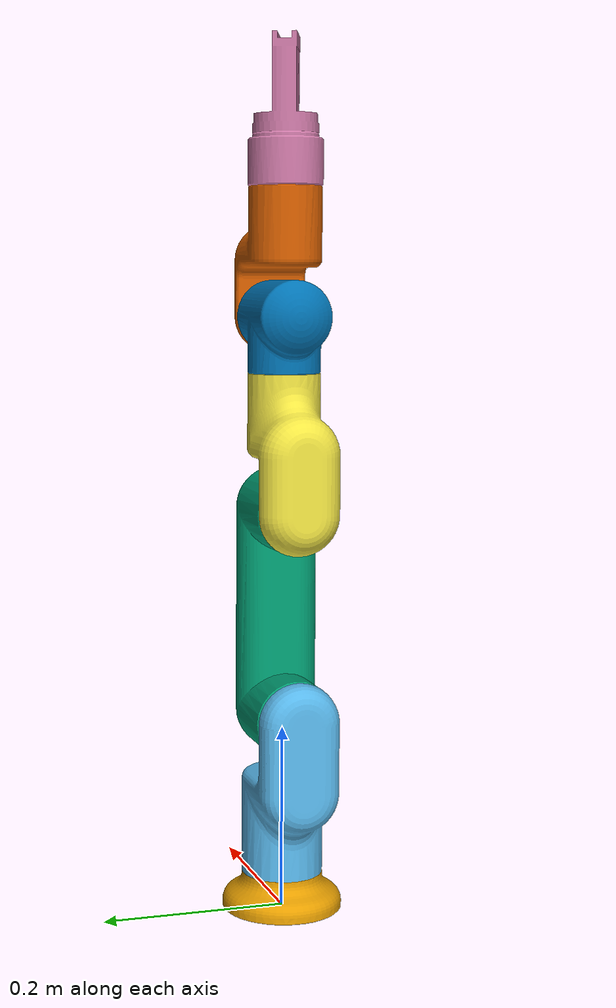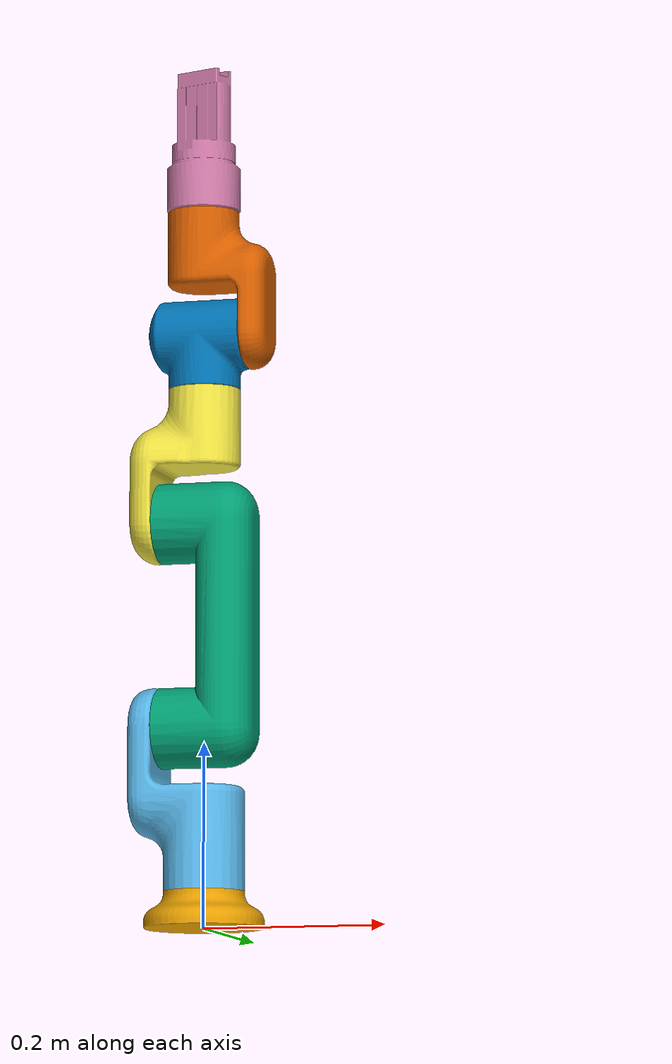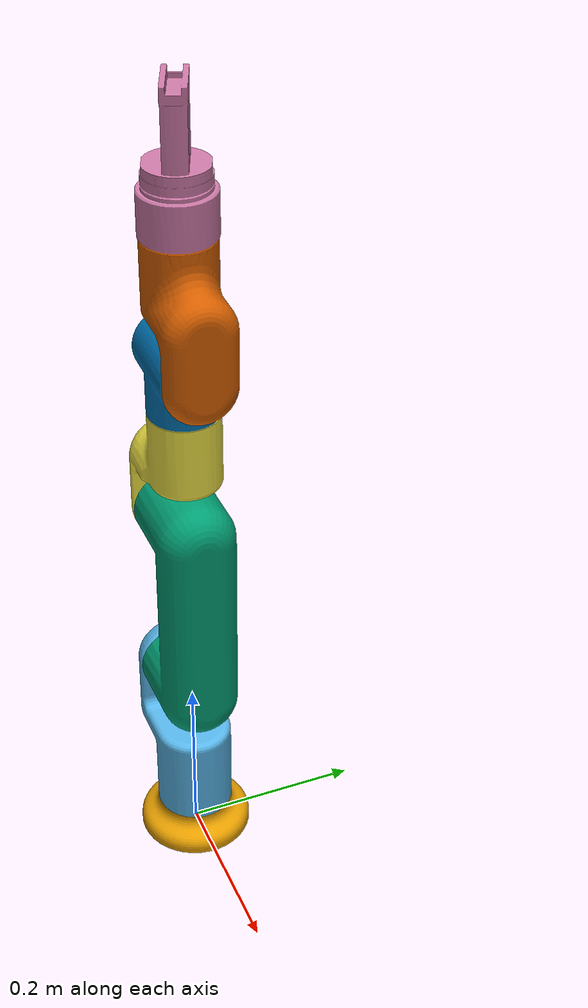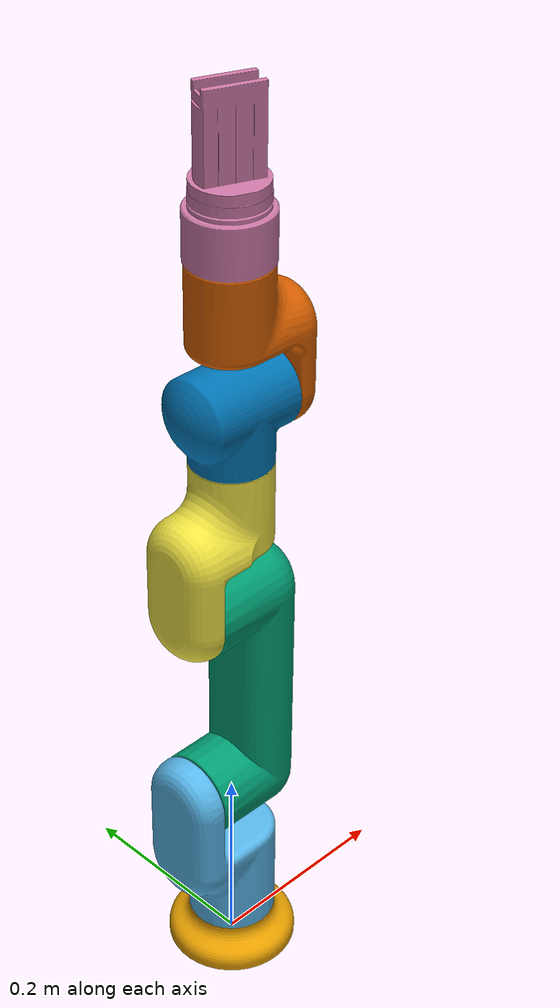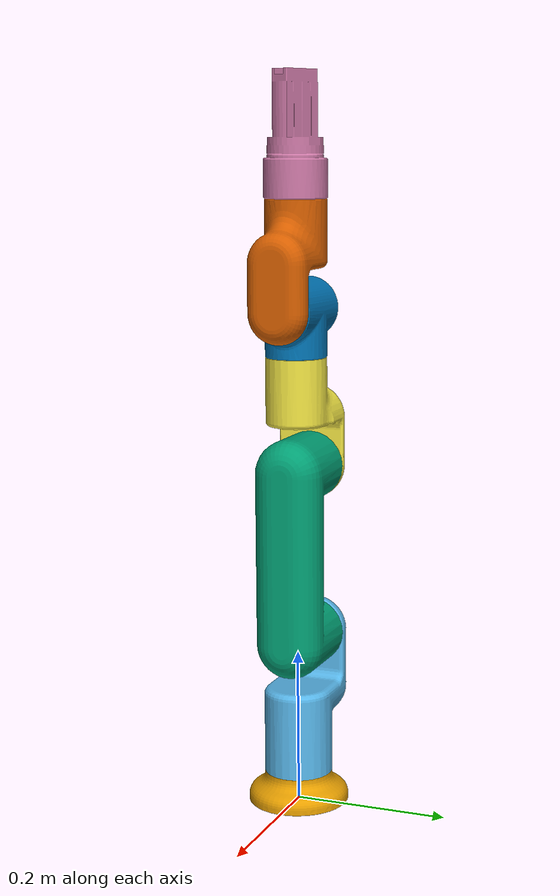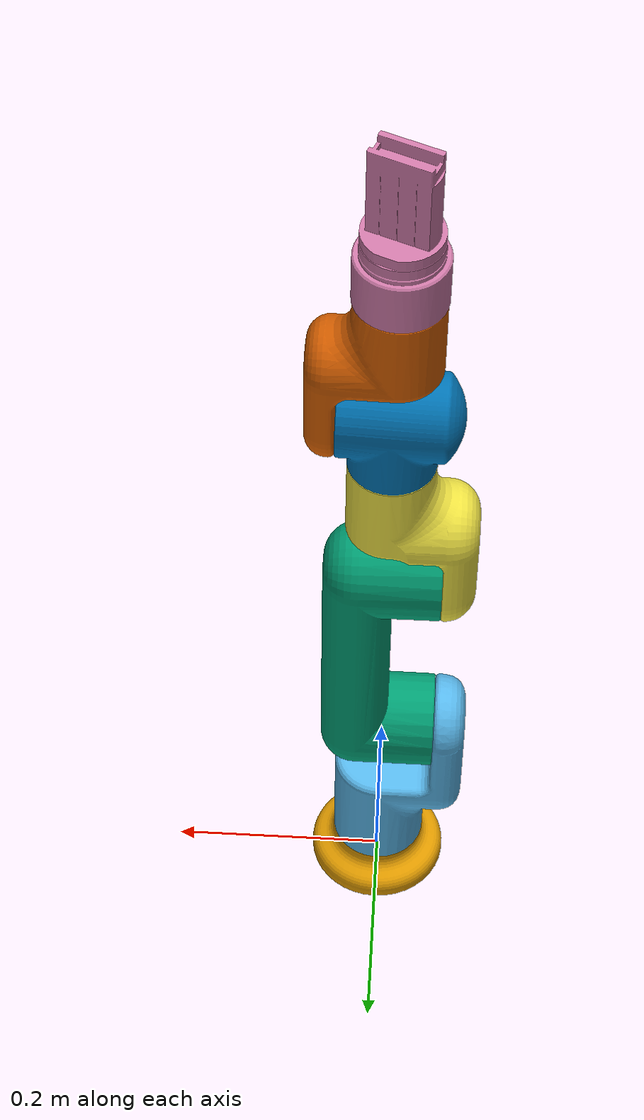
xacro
<?xml version="1.0"?>
<robot xmlns:xacro="http://www.ros.org/wiki/xacro" name="RobotArm_Left">
    <xacro:arg name="initial_positions_file" default="initial_positions.yaml" />

    <!-- Import RobotArm_Left urdf file -->
    <xacro:include filename="$(find arm_left_description)/urdf/arm_left.urdf" />

    <!-- Import control_xacro -->
    <xacro:include filename="RobotArm_Left.ros2_control.xacro" />

    <xacro:RobotArm_Left_ros2_control name="FakeSystem" initial_positions_file="$(arg initial_positions_file)"/>

</robot>

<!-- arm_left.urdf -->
<robot name="RobotArm_Left">
  <joint name="j1_Joint_L" type="revolute">
    <origin xyz="0. 0. 0.0485" rpy="0. 0. -3.1415854"/>
    <parent link="RobotArm_Left"/>
    <child link="j1_Link_L"/>
    <axis xyz="0. 0. 1."/>
    <limit lower="-3.0543262" upper="3.0543262" effort="340282346638528859811704183484516925440." velocity="0.8726646"/>
  </joint>
  <joint name="j2_Joint_L" type="revolute">
    <origin xyz="0.041 0. 0.1685" rpy="-1.5708 -0.0000001 1.5708 "/>
    <parent link="j1_Link_L"/>
    <child link="j2_Link_L"/>
    <axis xyz="0. 0. 1."/>
    <limit lower="-2.0071286" upper="2.0071286" effort="340282346638528859811704183484516925440." velocity="0.8726646"/>
  </joint>
  <joint name="j3_Joint_L" type="revolute">
    <origin xyz="0. -0.223 -0.002" rpy="-0.0000001 -0. 3.1415854"/>
    <parent link="j2_Link_L"/>
    <child link="j3_Link_L"/>
    <axis xyz="0. 0. 1."/>
    <limit lower="-1.9198622" upper="1.9198622" effort="340282346638528859811704183484516925440." velocity="0.8726646"/>
  </joint>
  <joint name="j4_Joint_L" type="revolute">
    <origin xyz="-0. 0.1379999 0.043 " rpy="-1.5613122 -1.5707927 3.1321123"/>
    <parent link="j3_Link_L"/>
    <child link="j4_Link_L"/>
    <axis xyz="0. 0. 1."/>
    <limit lower="-3.0543262" upper="3.0543262" effort="340282346638528859811704183484516925440." velocity="0.8726646"/>
  </joint>
  <joint name="j5_Joint_L" type="revolute">
    <origin xyz="0.041488 0.0009849 -0.0675 " rpy="1.5708 -0.0000001 -1.5471 "/>
    <parent link="j4_Link_L"/>
    <child link="j5_Link_L"/>
    <axis xyz="0. 0. 1."/>
    <limit lower="-1.8325957" upper="1.8325957" effort="340282346638528859811704183484516925440." velocity="0.8726646"/>
  </joint>
  <joint name="j6_Joint_L" type="revolute">
    <origin xyz="0. -0.137 0.043" rpy="1.5704987 1.5471071 -0.0003013"/>
    <parent link="j5_Link_L"/>
    <child link="j6_Link_L"/>
    <axis xyz="0. 0. 1."/>
    <limit lower="-6.2831853" upper="6.2831853" effort="340282346638528859811704183484516925440." velocity="0.8726646"/>
  </joint>
  <link name="RobotArm_Left">
    <visual>
      <origin xyz="0. 0. 0." rpy="0. 0. 0."/>
      <geometry>
        <mesh filename="package://arm_left_description/meshes/base_link_02_mesh.obj" scale="1. 1. 1."/>
      </geometry>
    </visual>
    <collision>
      <origin xyz="0. 0. 0." rpy="0. 0. 0."/>
      <geometry>
        <mesh filename="package://arm_left_description/meshes/base_link_02_mesh.obj" scale="1. 1. 1."/>
      </geometry>
    </collision>
  </link>
  <link name="j1_Link_L">
    <inertial>
      <origin xyz="0.02283 -0.0000001 0.07922 " rpy="0. 0. 0."/>
      <mass value="1.071"/>
      <inertia ixx="0.0033977" ixy="0." ixz="-0.0011756" iyy="0.0041143" iyz="-0." izz="0.0018011"/>
    </inertial>
    <visual>
      <origin xyz="0. 0. 0." rpy="0. 0. 0."/>
      <geometry>
        <mesh filename="package://arm_left_description/meshes/j1_Link_02_mesh.obj" scale="1. 1. 1."/>
      </geometry>
    </visual>
    <collision>
      <origin xyz="0. 0. 0." rpy="0. 0. 0."/>
      <geometry>
      	<mesh filename="package://arm_left_description/meshes/j1_Link_02_mesh.obj" scale="1. 1. 1."/>
      </geometry>
    </collision>
  </link>
  <link name="j2_Link_L">
    <inertial>
      <origin xyz="0. -0.1115 0.053099" rpy="0. 0. 0."/>
      <mass value="1.8748"/>
      <inertia ixx="0.017658" ixy="0." ixz="0." iyy="0.002303" iyz="0." izz="0.017242"/>
    </inertial>
    <visual>
      <origin xyz="0. 0. -0." rpy="0. -0. 0."/>
      <geometry>
        <mesh filename="package://arm_left_description/meshes/j2_Link_02_mesh.obj" scale="1. 1. 1."/>
      </geometry>
    </visual>
    <collision>
      <origin xyz="0. 0. -0." rpy="0. -0. 0."/>
      <geometry>
        <mesh filename="package://arm_left_description/meshes/j2_Link_02_mesh.obj" scale="1. 1. 1."/>
      </geometry>
    </collision>
  </link>
  <link name="j3_Link_L">
    <inertial>
      <origin xyz="-0.0000001 0.070277 0.015242 " rpy="0. 0. 0."/>
      <mass value="0.76714"/>
      <inertia ixx="0.0023668" ixy="0." ixz="-0." iyy="0.0011702" iyz="-0.000731" izz="0.0018731"/>
    </inertial>
    <visual>
      <origin xyz="0. -0. -0." rpy="0. 0. 0."/>
      <geometry>
        <mesh filename="package://arm_left_description/meshes/j3_Link_02_mesh.obj" scale="1. 1. 1."/>
      </geometry>
    </visual>
    <collision>
      <origin xyz="0. -0. -0." rpy="0. 0. 0."/>
      <geometry>
        <mesh filename="package://arm_left_description/meshes/j3_Link_02_mesh.obj" scale="1. 1. 1."/>
      </geometry>
    </collision>
  </link>
  <link name="j4_Link_L">
    <inertial>
      <origin xyz="-0.0037368 -0.0000883 -0.055958 " rpy="0. 0. 0."/>
      <mass value="0.61241"/>
      <inertia ixx="0.0006883" ixy="-0.0000044" ixz="-0.0000265" iyy="0.0008747" iyz="-0.0000006" izz="0.0006657"/>
    </inertial>
    <visual>
      <origin xyz="0. 0. -0." rpy="-0. -0. -0."/>
      <geometry>
        <mesh filename="package://arm_left_description/meshes/j4_Link_02_mesh.obj" scale="1. 1. 1."/>
      </geometry>
    </visual>
    <collision>
      <origin xyz="0. 0. -0." rpy="-0. -0. -0."/>
      <geometry>
        <mesh filename="package://arm_left_description/meshes/j4_Link_02_mesh.obj" scale="1. 1. 1."/>
      </geometry>
    </collision>
  </link>
  <link name="j5_Link_L">
    <inertial>
      <origin xyz="0. -0.068149 0.018232" rpy="0. 0. 0."/>
      <mass value="0.67991"/>
      <inertia ixx="0.0018403" ixy="0." ixz="0." iyy="0.0009891" iyz="0.0005627" izz="0.0013908"/>
    </inertial>
    <visual>
      <origin xyz="0. -0. -0." rpy="0.0000001 0. -0.0000001"/>
      <geometry>
        <mesh filename="package://arm_left_description/meshes/j5_Link_02_mesh.obj" scale="1. 1. 1."/>
      </geometry>
    </visual>
    <collision>
      <origin xyz="0. -0. -0." rpy="0.0000001 0. -0.0000001"/>
      <geometry>
        <mesh filename="package://arm_left_description/meshes/j5_Link_02_mesh.obj" scale="1. 1. 1."/>
      </geometry>
    </collision>
  </link>
  <link name="j6_Link_L">
    <inertial>
      <origin xyz="-0. 0. 0.052089" rpy="0. 0. 0."/>
      <mass value="0.46058"/>
      <inertia ixx="0.0003679" ixy="0.0000088" ixz="0." iyy="0.0003859" iyz="0." izz="0.0002959"/>
    </inertial>
    <visual>
      <origin xyz="0. -0. 0." rpy="-0. -0. 0."/>
      <geometry>
        <mesh filename="package://arm_left_description/meshes/j6_Link_02_mesh.obj" scale="1. 1. 1."/>
      </geometry>
    </visual>
    <collision>
      <origin xyz="0. -0. 0." rpy="-0. -0. 0."/>
      <geometry>
        <mesh filename="package://arm_left_description/meshes/j6_Link_02_mesh.obj" scale="1. 1. 1."/>
      </geometry>
    </collision>
  </link>
</robot>
